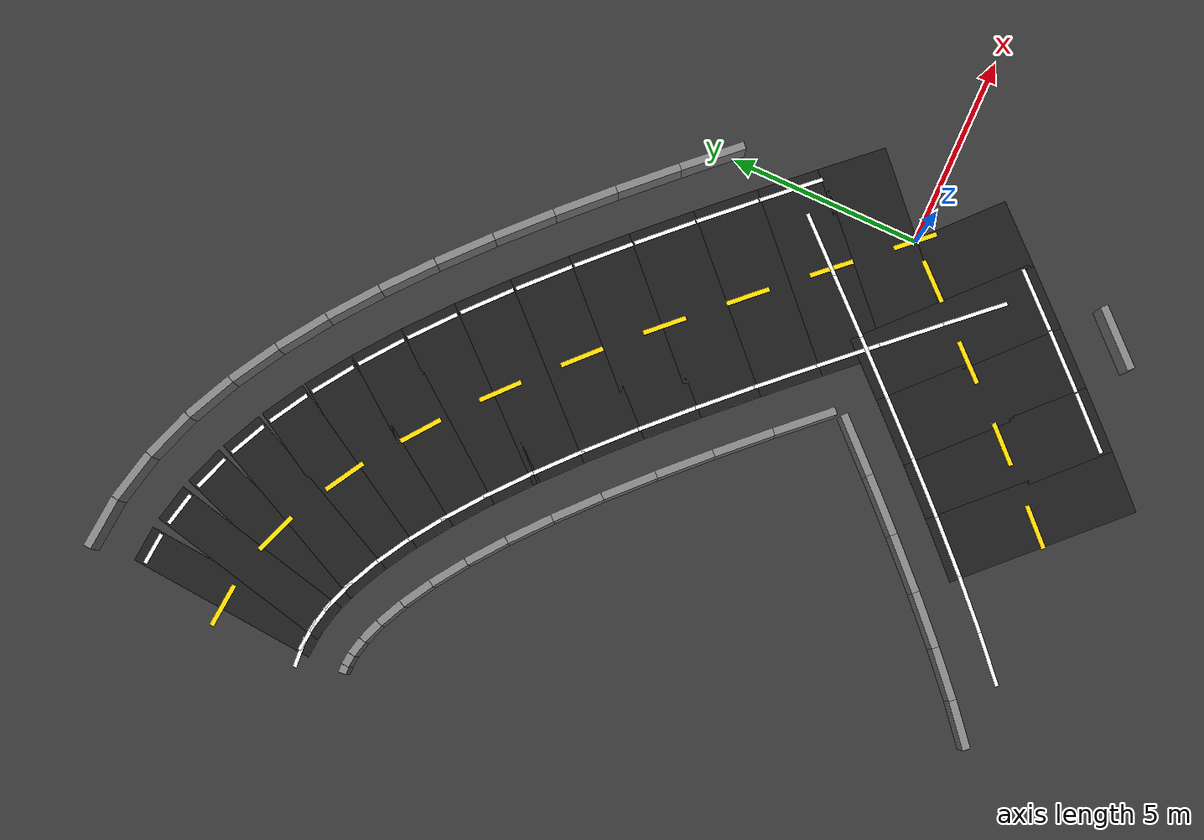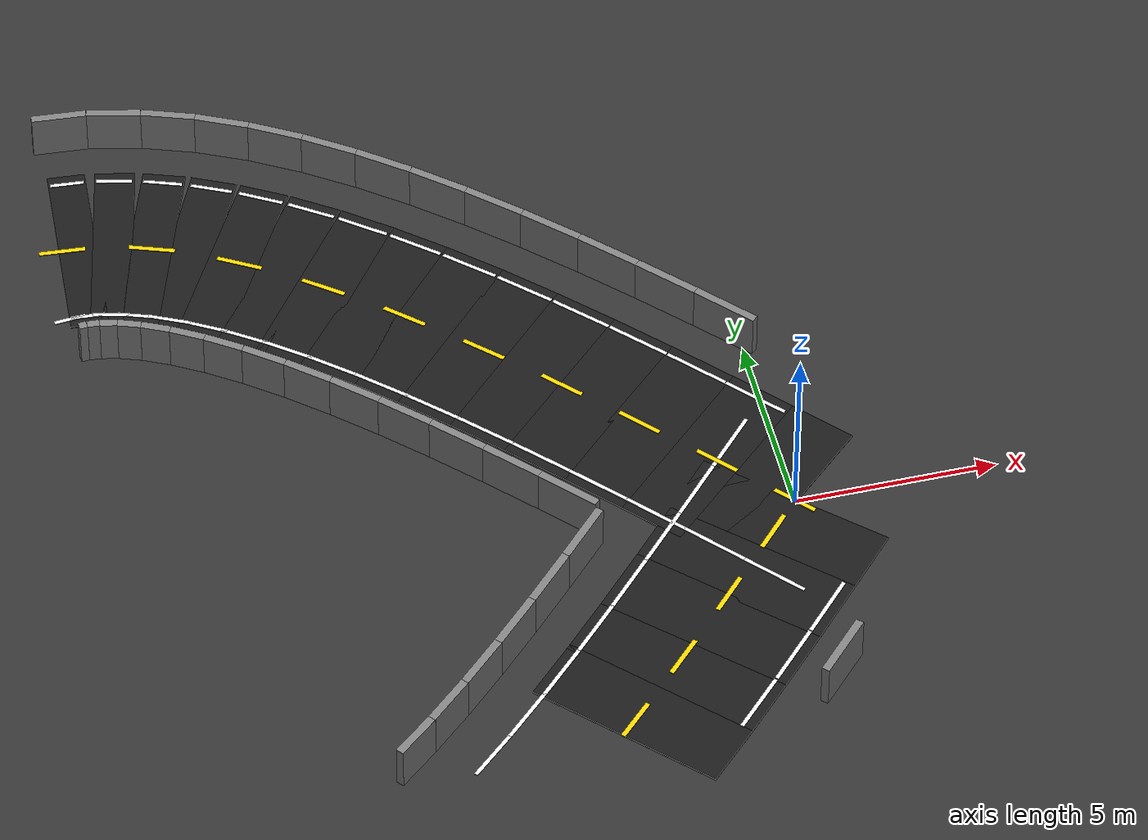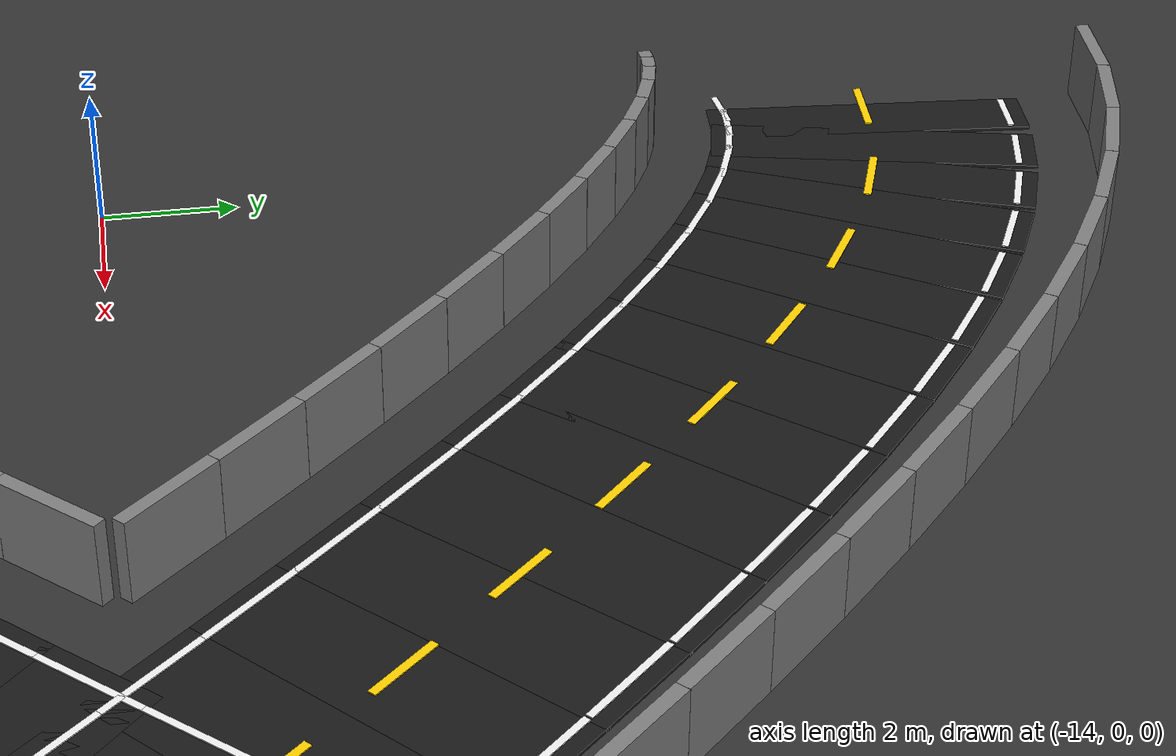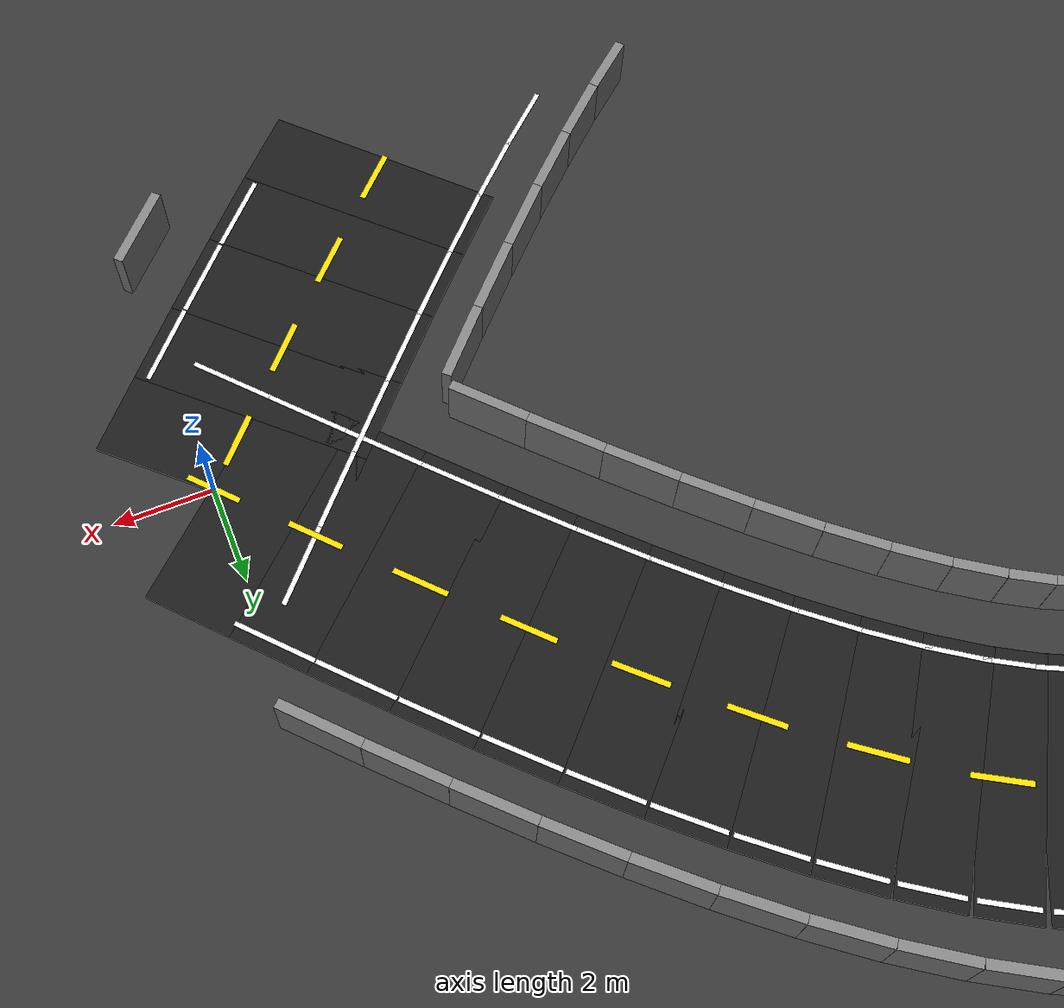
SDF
<sdf version="1.6">
 <world name="adas_figure8_circuit">
  <model name="ground">
   <static>true</static>
   <link name="link">
    <collision name="collision">
     <geometry><plane><normal>0 0 1</normal><size>80.0 80.0</size></plane></geometry>
    </collision>
    <visual name="visual">
     <geometry><plane><normal>0 0 1</normal><size>80.0 80.0</size></plane></geometry>
     <material><ambient>0.16 0.16 0.16 1</ambient><diffuse>0.20 0.20 0.20 1</diffuse></material>
    </visual>
   </link>
  </model>
  <model name="road_060">
   <static>true</static>
   <pose>-0.5757 0.6272 0.025 0 0 2.313427</pose>
   <link name="link">
    <collision name="collision"><geometry><box><size>1.8027 5.000 0.05</size></box></geometry></collision>
    <visual name="visual">
     <geometry><box><size>1.8027 5.000 0.05</size></box></geometry>
     <material><ambient>0.07 0.07 0.07 1</ambient><diffuse>0.10 0.10 0.10 1</diffuse></material>
    </visual>
   </link>
  </model>
  <model name="road_061">
   <static>true</static>
   <pose>-1.7255 1.8746 0.025 0 0 2.317549</pose>
   <link name="link">
    <collision name="collision"><geometry><box><size>1.7904 5.000 0.05</size></box></geometry></collision>
    <visual name="visual">
     <geometry><box><size>1.7904 5.000 0.05</size></box></geometry>
     <material><ambient>0.07 0.07 0.07 1</ambient><diffuse>0.10 0.10 0.10 1</diffuse></material>
    </visual>
   </link>
  </model>
  <model name="road_062">
   <static>true</static>
   <pose>-2.8706 3.1016 0.025 0 0 2.325917</pose>
   <link name="link">
    <collision name="collision"><geometry><box><size>1.7661 5.000 0.05</size></box></geometry></collision>
    <visual name="visual">
     <geometry><box><size>1.7661 5.000 0.05</size></box></geometry>
     <material><ambient>0.07 0.07 0.07 1</ambient><diffuse>0.10 0.10 0.10 1</diffuse></material>
    </visual>
   </link>
  </model>
  <model name="road_063">
   <static>true</static>
   <pose>-4.0078 4.2945 0.025 0 0 2.338784</pose>
   <link name="link">
    <collision name="collision"><geometry><box><size>1.7302 5.000 0.05</size></box></geometry></collision>
    <visual name="visual">
     <geometry><box><size>1.7302 5.000 0.05</size></box></geometry>
     <material><ambient>0.07 0.07 0.07 1</ambient><diffuse>0.10 0.10 0.10 1</diffuse></material>
    </visual>
   </link>
  </model>
  <model name="road_064">
   <static>true</static>
   <pose>-5.1340 5.4404 0.025 0 0 2.356552</pose>
   <link name="link">
    <collision name="collision"><geometry><box><size>1.6833 5.000 0.05</size></box></geometry></collision>
    <visual name="visual">
     <geometry><box><size>1.6833 5.000 0.05</size></box></geometry>
     <material><ambient>0.07 0.07 0.07 1</ambient><diffuse>0.10 0.10 0.10 1</diffuse></material>
    </visual>
   </link>
  </model>
  <model name="road_065">
   <static>true</static>
   <pose>-6.2462 6.5267 0.025 0 0 2.379794</pose>
   <link name="link">
    <collision name="collision"><geometry><box><size>1.6262 5.000 0.05</size></box></geometry></collision>
    <visual name="visual">
     <geometry><box><size>1.6262 5.000 0.05</size></box></geometry>
     <material><ambient>0.07 0.07 0.07 1</ambient><diffuse>0.10 0.10 0.10 1</diffuse></material>
    </visual>
   </link>
  </model>
  <model name="road_066">
   <static>true</static>
   <pose>-7.3412 7.5415 0.025 0 0 2.409289</pose>
   <link name="link">
    <collision name="collision"><geometry><box><size>1.5600 5.000 0.05</size></box></geometry></collision>
    <visual name="visual">
     <geometry><box><size>1.5600 5.000 0.05</size></box></geometry>
     <material><ambient>0.07 0.07 0.07 1</ambient><diffuse>0.10 0.10 0.10 1</diffuse></material>
    </visual>
   </link>
  </model>
  <model name="road_067">
   <static>true</static>
   <pose>-8.4162 8.4737 0.025 0 0 2.446072</pose>
   <link name="link">
    <collision name="collision"><geometry><box><size>1.4861 5.000 0.05</size></box></geometry></collision>
    <visual name="visual">
     <geometry><box><size>1.4861 5.000 0.05</size></box></geometry>
     <material><ambient>0.07 0.07 0.07 1</ambient><diffuse>0.10 0.10 0.10 1</diffuse></material>
    </visual>
   </link>
  </model>
  <model name="road_068">
   <static>true</static>
   <pose>-9.4680 9.3130 0.025 0 0 2.491490</pose>
   <link name="link">
    <collision name="collision"><geometry><box><size>1.4060 5.000 0.05</size></box></geometry></collision>
    <visual name="visual">
     <geometry><box><size>1.4060 5.000 0.05</size></box></geometry>
     <material><ambient>0.07 0.07 0.07 1</ambient><diffuse>0.10 0.10 0.10 1</diffuse></material>
    </visual>
   </link>
  </model>
  <model name="road_069">
   <static>true</static>
   <pose>-10.4939 10.0503 0.025 0 0 2.547260</pose>
   <link name="link">
    <collision name="collision"><geometry><box><size>1.3217 5.000 0.05</size></box></geometry></collision>
    <visual name="visual">
     <geometry><box><size>1.3217 5.000 0.05</size></box></geometry>
     <material><ambient>0.07 0.07 0.07 1</ambient><diffuse>0.10 0.10 0.10 1</diffuse></material>
    </visual>
   </link>
  </model>
  <model name="road_070">
   <static>true</static>
   <pose>-11.4910 10.6774 0.025 0 0 2.615516</pose>
   <link name="link">
    <collision name="collision"><geometry><box><size>1.2356 5.000 0.05</size></box></geometry></collision>
    <visual name="visual">
     <geometry><box><size>1.2356 5.000 0.05</size></box></geometry>
     <material><ambient>0.07 0.07 0.07 1</ambient><diffuse>0.10 0.10 0.10 1</diffuse></material>
    </visual>
   </link>
  </model>
  <model name="road_071">
   <static>true</static>
   <pose>-12.4567 11.1876 0.025 0 0 2.698785</pose>
   <link name="link">
    <collision name="collision"><geometry><box><size>1.1505 5.000 0.05</size></box></geometry></collision>
    <visual name="visual">
     <geometry><box><size>1.1505 5.000 0.05</size></box></geometry>
     <material><ambient>0.07 0.07 0.07 1</ambient><diffuse>0.10 0.10 0.10 1</diffuse></material>
    </visual>
   </link>
  </model>
  <model name="road_072">
   <static>true</static>
   <pose>-13.3882 11.5752 0.025 0 0 2.799787</pose>
   <link name="link">
    <collision name="collision"><geometry><box><size>1.0699 5.000 0.05</size></box></geometry></collision>
    <visual name="visual">
     <geometry><box><size>1.0699 5.000 0.05</size></box></geometry>
     <material><ambient>0.07 0.07 0.07 1</ambient><diffuse>0.10 0.10 0.10 1</diffuse></material>
    </visual>
   </link>
  </model>
  <model name="road_073">
   <static>true</static>
   <pose>-14.2830 11.8360 0.025 0 0 2.920897</pose>
   <link name="link">
    <collision name="collision"><geometry><box><size>0.9976 5.000 0.05</size></box></geometry></collision>
    <visual name="visual">
     <geometry><box><size>0.9976 5.000 0.05</size></box></geometry>
     <material><ambient>0.07 0.07 0.07 1</ambient><diffuse>0.10 0.10 0.10 1</diffuse></material>
    </visual>
   </link>
  </model>
  <model name="road_074">
   <static>true</static>
   <pose>-15.1386 11.9671 0.025 0 0 3.063072</pose>
   <link name="link">
    <collision name="collision"><geometry><box><size>0.9381 5.000 0.05</size></box></geometry></collision>
    <visual name="visual">
     <geometry><box><size>0.9381 5.000 0.05</size></box></geometry>
     <material><ambient>0.07 0.07 0.07 1</ambient><diffuse>0.10 0.10 0.10 1</diffuse></material>
    </visual>
   </link>
  </model>
  <model name="road_115">
   <static>true</static>
   <pose>-5.1340 -5.4404 0.025 0 0 0.785040</pose>
   <link name="link">
    <collision name="collision"><geometry><box><size>1.6833 5.000 0.05</size></box></geometry></collision>
    <visual name="visual">
     <geometry><box><size>1.6833 5.000 0.05</size></box></geometry>
     <material><ambient>0.07 0.07 0.07 1</ambient><diffuse>0.10 0.10 0.10 1</diffuse></material>
    </visual>
   </link>
  </model>
  <model name="road_116">
   <static>true</static>
   <pose>-4.0078 -4.2945 0.025 0 0 0.802808</pose>
   <link name="link">
    <collision name="collision"><geometry><box><size>1.7302 5.000 0.05</size></box></geometry></collision>
    <visual name="visual">
     <geometry><box><size>1.7302 5.000 0.05</size></box></geometry>
     <material><ambient>0.07 0.07 0.07 1</ambient><diffuse>0.10 0.10 0.10 1</diffuse></material>
    </visual>
   </link>
  </model>
  <model name="road_117">
   <static>true</static>
   <pose>-2.8706 -3.1016 0.025 0 0 0.815676</pose>
   <link name="link">
    <collision name="collision"><geometry><box><size>1.7661 5.000 0.05</size></box></geometry></collision>
    <visual name="visual">
     <geometry><box><size>1.7661 5.000 0.05</size></box></geometry>
     <material><ambient>0.07 0.07 0.07 1</ambient><diffuse>0.10 0.10 0.10 1</diffuse></material>
    </visual>
   </link>
  </model>
  <model name="road_118">
   <static>true</static>
   <pose>-1.7255 -1.8746 0.025 0 0 0.824044</pose>
   <link name="link">
    <collision name="collision"><geometry><box><size>1.7904 5.000 0.05</size></box></geometry></collision>
    <visual name="visual">
     <geometry><box><size>1.7904 5.000 0.05</size></box></geometry>
     <material><ambient>0.07 0.07 0.07 1</ambient><diffuse>0.10 0.10 0.10 1</diffuse></material>
    </visual>
   </link>
  </model>
  <model name="road_119">
   <static>true</static>
   <pose>-0.5757 -0.6272 0.025 0 0 0.828166</pose>
   <link name="link">
    <collision name="collision"><geometry><box><size>1.8027 5.000 0.05</size></box></geometry></collision>
    <visual name="visual">
     <geometry><box><size>1.8027 5.000 0.05</size></box></geometry>
     <material><ambient>0.07 0.07 0.07 1</ambient><diffuse>0.10 0.10 0.10 1</diffuse></material>
    </visual>
   </link>
  </model>
  <model name="center_dash_031">
   <static>true</static>
   <pose>0.0000 -0.0000 0.058 0 0 2.313427</pose>
   <link name="link">
    <visual name="visual">
     <geometry><box><size>1.150 0.12 0.02</size></box></geometry>
     <material><ambient>1 0.82 0 1</ambient><diffuse>1 0.82 0 1</diffuse></material>
    </visual>
   </link>
  </model>
  <model name="center_dash_032">
   <static>true</static>
   <pose>-1.5063 1.6378 0.058 0 0 2.317549</pose>
   <link name="link">
    <visual name="visual">
     <geometry><box><size>1.150 0.12 0.02</size></box></geometry>
     <material><ambient>1 0.82 0 1</ambient><diffuse>1 0.82 0 1</diffuse></material>
    </visual>
   </link>
  </model>
  <model name="center_dash_033">
   <static>true</static>
   <pose>-3.0242 3.2647 0.058 0 0 2.325917</pose>
   <link name="link">
    <visual name="visual">
     <geometry><box><size>1.150 0.12 0.02</size></box></geometry>
     <material><ambient>1 0.82 0 1</ambient><diffuse>1 0.82 0 1</diffuse></material>
    </visual>
   </link>
  </model>
  <model name="center_dash_034">
   <static>true</static>
   <pose>-4.5643 4.8707 0.058 0 0 2.338784</pose>
   <link name="link">
    <visual name="visual">
     <geometry><box><size>1.150 0.12 0.02</size></box></geometry>
     <material><ambient>1 0.82 0 1</ambient><diffuse>1 0.82 0 1</diffuse></material>
    </visual>
   </link>
  </model>
  <model name="center_dash_035">
   <static>true</static>
   <pose>-6.1482 6.4333 0.058 0 0 2.379794</pose>
   <link name="link">
    <visual name="visual">
     <geometry><box><size>1.150 0.12 0.02</size></box></geometry>
     <material><ambient>1 0.82 0 1</ambient><diffuse>1 0.82 0 1</diffuse></material>
    </visual>
   </link>
  </model>
  <model name="center_dash_036">
   <static>true</static>
   <pose>-7.7849 7.9404 0.058 0 0 2.409289</pose>
   <link name="link">
    <visual name="visual">
     <geometry><box><size>1.150 0.12 0.02</size></box></geometry>
     <material><ambient>1 0.82 0 1</ambient><diffuse>1 0.82 0 1</diffuse></material>
    </visual>
   </link>
  </model>
  <model name="center_dash_037">
   <static>true</static>
   <pose>-9.5099 9.3449 0.058 0 0 2.491490</pose>
   <link name="link">
    <visual name="visual">
     <geometry><box><size>1.150 0.12 0.02</size></box></geometry>
     <material><ambient>1 0.82 0 1</ambient><diffuse>1 0.82 0 1</diffuse></material>
    </visual>
   </link>
  </model>
  <model name="center_dash_038">
   <static>true</static>
   <pose>-11.3486 10.5947 0.058 0 0 2.615516</pose>
   <link name="link">
    <visual name="visual">
     <geometry><box><size>1.150 0.12 0.02</size></box></geometry>
     <material><ambient>1 0.82 0 1</ambient><diffuse>1 0.82 0 1</diffuse></material>
    </visual>
   </link>
  </model>
  <model name="center_dash_039">
   <static>true</static>
   <pose>-13.3478 11.5609 0.058 0 0 2.799787</pose>
   <link name="link">
    <visual name="visual">
     <geometry><box><size>1.150 0.12 0.02</size></box></geometry>
     <material><ambient>1 0.82 0 1</ambient><diffuse>1 0.82 0 1</diffuse></material>
    </visual>
   </link>
  </model>
  <model name="center_dash_040">
   <static>true</static>
   <pose>-15.5181 11.9970 0.058 0 0 3.063072</pose>
   <link name="link">
    <visual name="visual">
     <geometry><box><size>1.150 0.12 0.02</size></box></geometry>
     <material><ambient>1 0.82 0 1</ambient><diffuse>1 0.82 0 1</diffuse></material>
    </visual>
   </link>
  </model>
  <model name="center_dash_059">
   <static>true</static>
   <pose>-5.3511 -5.6573 0.058 0 0 0.785040</pose>
   <link name="link">
    <visual name="visual">
     <geometry><box><size>1.150 0.12 0.02</size></box></geometry>
     <material><ambient>1 0.82 0 1</ambient><diffuse>1 0.82 0 1</diffuse></material>
    </visual>
   </link>
  </model>
  <model name="center_dash_060">
   <static>true</static>
   <pose>-3.7914 -4.0704 0.058 0 0 0.802808</pose>
   <link name="link">
    <visual name="visual">
     <geometry><box><size>1.150 0.12 0.02</size></box></geometry>
     <material><ambient>1 0.82 0 1</ambient><diffuse>1 0.82 0 1</diffuse></material>
    </visual>
   </link>
  </model>
  <model name="center_dash_061">
   <static>true</static>
   <pose>-2.2620 -2.4543 0.058 0 0 0.824044</pose>
   <link name="link">
    <visual name="visual">
     <geometry><box><size>1.150 0.12 0.02</size></box></geometry>
     <material><ambient>1 0.82 0 1</ambient><diffuse>1 0.82 0 1</diffuse></material>
    </visual>
   </link>
  </model>
  <model name="center_dash_062">
   <static>true</static>
   <pose>-0.7523 -0.8196 0.058 0 0 0.828166</pose>
   <link name="link">
    <visual name="visual">
     <geometry><box><size>1.150 0.12 0.02</size></box></geometry>
     <material><ambient>1 0.82 0 1</ambient><diffuse>1 0.82 0 1</diffuse></material>
    </visual>
   </link>
  </model>
  <model name="edge_left_000">
   <static>true</static>
   <pose>-1.0598 2.1284 0.058 0 0 0.828166</pose>
   <link name="link">
    <visual name="visual">
     <geometry><box><size>1.7027 0.10 0.02</size></box></geometry>
     <material><ambient>0.95 0.95 0.95 1</ambient><diffuse>0.95 0.95 0.95 1</diffuse></material>
    </visual>
   </link>
  </model>
  <model name="edge_left_059">
   <static>true</static>
   <pose>-1.0598 -2.1284 0.058 0 0 2.313427</pose>
   <link name="link">
    <visual name="visual">
     <geometry><box><size>1.7027 0.10 0.02</size></box></geometry>
     <material><ambient>0.95 0.95 0.95 1</ambient><diffuse>0.95 0.95 0.95 1</diffuse></material>
    </visual>
   </link>
  </model>
  <model name="edge_left_060">
   <static>true</static>
   <pose>-2.2112 -0.8741 0.058 0 0 2.313427</pose>
   <link name="link">
    <visual name="visual">
     <geometry><box><size>1.7027 0.10 0.02</size></box></geometry>
     <material><ambient>0.95 0.95 0.95 1</ambient><diffuse>0.95 0.95 0.95 1</diffuse></material>
    </visual>
   </link>
  </model>
  <model name="edge_left_061">
   <static>true</static>
   <pose>-3.3548 0.3667 0.058 0 0 2.317549</pose>
   <link name="link">
    <visual name="visual">
     <geometry><box><size>1.6904 0.10 0.02</size></box></geometry>
     <material><ambient>0.95 0.95 0.95 1</ambient><diffuse>0.95 0.95 0.95 1</diffuse></material>
    </visual>
   </link>
  </model>
  <model name="edge_left_062">
   <static>true</static>
   <pose>-4.4872 1.5800 0.058 0 0 2.325917</pose>
   <link name="link">
    <visual name="visual">
     <geometry><box><size>1.6661 0.10 0.02</size></box></geometry>
     <material><ambient>0.95 0.95 0.95 1</ambient><diffuse>0.95 0.95 0.95 1</diffuse></material>
    </visual>
   </link>
  </model>
  <model name="edge_left_063">
   <static>true</static>
   <pose>-5.6047 2.7523 0.058 0 0 2.338784</pose>
   <link name="link">
    <visual name="visual">
     <geometry><box><size>1.6302 0.10 0.02</size></box></geometry>
     <material><ambient>0.95 0.95 0.95 1</ambient><diffuse>0.95 0.95 0.95 1</diffuse></material>
    </visual>
   </link>
  </model>
  <model name="edge_left_064">
   <static>true</static>
   <pose>-6.7033 3.8701 0.058 0 0 2.356552</pose>
   <link name="link">
    <visual name="visual">
     <geometry><box><size>1.5833 0.10 0.02</size></box></geometry>
     <material><ambient>0.95 0.95 0.95 1</ambient><diffuse>0.95 0.95 0.95 1</diffuse></material>
    </visual>
   </link>
  </model>
  <model name="edge_left_065">
   <static>true</static>
   <pose>-7.7785 4.9203 0.058 0 0 2.379794</pose>
   <link name="link">
    <visual name="visual">
     <geometry><box><size>1.5262 0.10 0.02</size></box></geometry>
     <material><ambient>0.95 0.95 0.95 1</ambient><diffuse>0.95 0.95 0.95 1</diffuse></material>
    </visual>
   </link>
  </model>
  <model name="edge_left_066">
   <static>true</static>
   <pose>-8.8255 5.8906 0.058 0 0 2.409289</pose>
   <link name="link">
    <visual name="visual">
     <geometry><box><size>1.4600 0.10 0.02</size></box></geometry>
     <material><ambient>0.95 0.95 0.95 1</ambient><diffuse>0.95 0.95 0.95 1</diffuse></material>
    </visual>
   </link>
  </model>
  <model name="edge_left_067">
   <static>true</static>
   <pose>-9.8387 6.7693 0.058 0 0 2.446072</pose>
   <link name="link">
    <visual name="visual">
     <geometry><box><size>1.3861 0.10 0.02</size></box></geometry>
     <material><ambient>0.95 0.95 0.95 1</ambient><diffuse>0.95 0.95 0.95 1</diffuse></material>
    </visual>
   </link>
  </model>
  <model name="edge_left_068">
   <static>true</static>
   <pose>-10.8117 7.5458 0.058 0 0 2.491490</pose>
   <link name="link">
    <visual name="visual">
     <geometry><box><size>1.3060 0.10 0.02</size></box></geometry>
     <material><ambient>0.95 0.95 0.95 1</ambient><diffuse>0.95 0.95 0.95 1</diffuse></material>
    </visual>
   </link>
  </model>
  <model name="edge_left_069">
   <static>true</static>
   <pose>-11.7370 8.2109 0.058 0 0 2.547260</pose>
   <link name="link">
    <visual name="visual">
     <geometry><box><size>1.2217 0.10 0.02</size></box></geometry>
     <material><ambient>0.95 0.95 0.95 1</ambient><diffuse>0.95 0.95 0.95 1</diffuse></material>
    </visual>
   </link>
  </model>
  <model name="edge_left_070">
   <static>true</static>
   <pose>-12.6058 8.7576 0.058 0 0 2.615516</pose>
   <link name="link">
    <visual name="visual">
     <geometry><box><size>1.1356 0.10 0.02</size></box></geometry>
     <material><ambient>0.95 0.95 0.95 1</ambient><diffuse>0.95 0.95 0.95 1</diffuse></material>
    </visual>
   </link>
  </model>
  <model name="edge_left_071">
   <static>true</static>
   <pose>-13.4079 9.1817 0.058 0 0 2.698785</pose>
   <link name="link">
    <visual name="visual">
     <geometry><box><size>1.0505 0.10 0.02</size></box></geometry>
     <material><ambient>0.95 0.95 0.95 1</ambient><diffuse>0.95 0.95 0.95 1</diffuse></material>
    </visual>
   </link>
  </model>
  <model name="edge_left_072">
   <static>true</static>
   <pose>-14.1323 9.4836 0.058 0 0 2.799787</pose>
   <link name="link">
    <visual name="visual">
     <geometry><box><size>0.9699 0.10 0.02</size></box></geometry>
     <material><ambient>0.95 0.95 0.95 1</ambient><diffuse>0.95 0.95 0.95 1</diffuse></material>
    </visual>
   </link>
  </model>
  <model name="edge_left_073">
   <static>true</static>
   <pose>-14.7689 9.6699 0.058 0 0 2.920897</pose>
   <link name="link">
    <visual name="visual">
     <geometry><box><size>0.8976 0.10 0.02</size></box></geometry>
     <material><ambient>0.95 0.95 0.95 1</ambient><diffuse>0.95 0.95 0.95 1</diffuse></material>
    </visual>
   </link>
  </model>
  <model name="edge_left_074">
   <static>true</static>
   <pose>-15.3127 9.7540 0.058 0 0 3.063072</pose>
   <link name="link">
    <visual name="visual">
     <geometry><box><size>0.8381 0.10 0.02</size></box></geometry>
     <material><ambient>0.95 0.95 0.95 1</ambient><diffuse>0.95 0.95 0.95 1</diffuse></material>
    </visual>
   </link>
  </model>
  <model name="edge_left_075">
   <static>true</static>
   <pose>-15.7693 9.7547 0.058 0 0 -3.058868</pose>
   <link name="link">
    <visual name="visual">
     <geometry><box><size>0.7956 0.10 0.02</size></box></geometry>
     <material><ambient>0.95 0.95 0.95 1</ambient><diffuse>0.95 0.95 0.95 1</diffuse></material>
    </visual>
   </link>
  </model>
  <model name="edge_left_113">
   <static>true</static>
   <pose>-8.8255 -5.8906 0.058 0 0 0.732304</pose>
   <link name="link">
    <visual name="visual">
     <geometry><box><size>1.4600 0.10 0.02</size></box></geometry>
     <material><ambient>0.95 0.95 0.95 1</ambient><diffuse>0.95 0.95 0.95 1</diffuse></material>
    </visual>
   </link>
  </model>
  <model name="edge_left_114">
   <static>true</static>
   <pose>-7.7785 -4.9203 0.058 0 0 0.761799</pose>
   <link name="link">
    <visual name="visual">
     <geometry><box><size>1.5262 0.10 0.02</size></box></geometry>
     <material><ambient>0.95 0.95 0.95 1</ambient><diffuse>0.95 0.95 0.95 1</diffuse></material>
    </visual>
   </link>
  </model>
  <model name="edge_left_115">
   <static>true</static>
   <pose>-6.7033 -3.8701 0.058 0 0 0.785040</pose>
   <link name="link">
    <visual name="visual">
     <geometry><box><size>1.5833 0.10 0.02</size></box></geometry>
     <material><ambient>0.95 0.95 0.95 1</ambient><diffuse>0.95 0.95 0.95 1</diffuse></material>
    </visual>
   </link>
  </model>
  <model name="edge_left_116">
   <static>true</static>
   <pose>-5.6047 -2.7523 0.058 0 0 0.802808</pose>
   <link name="link">
    <visual name="visual">
     <geometry><box><size>1.6302 0.10 0.02</size></box></geometry>
     <material><ambient>0.95 0.95 0.95 1</ambient><diffuse>0.95 0.95 0.95 1</diffuse></material>
    </visual>
   </link>
  </model>
  <model name="edge_left_117">
   <static>true</static>
   <pose>-4.4872 -1.5800 0.058 0 0 0.815676</pose>
   <link name="link">
    <visual name="visual">
     <geometry><box><size>1.6661 0.10 0.02</size></box></geometry>
     <material><ambient>0.95 0.95 0.95 1</ambient><diffuse>0.95 0.95 0.95 1</diffuse></material>
    </visual>
   </link>
  </model>
  <model name="edge_left_118">
   <static>true</static>
   <pose>-3.3548 -0.3667 0.058 0 0 0.824044</pose>
   <link name="link">
    <visual name="visual">
     <geometry><box><size>1.6904 0.10 0.02</size></box></geometry>
     <material><ambient>0.95 0.95 0.95 1</ambient><diffuse>0.95 0.95 0.95 1</diffuse></material>
    </visual>
   </link>
  </model>
  <model name="edge_left_119">
   <static>true</static>
   <pose>-2.2112 0.8741 0.058 0 0 0.828166</pose>
   <link name="link">
    <visual name="visual">
     <geometry><box><size>1.7027 0.10 0.02</size></box></geometry>
     <material><ambient>0.95 0.95 0.95 1</ambient><diffuse>0.95 0.95 0.95 1</diffuse></material>
    </visual>
   </link>
  </model>
  <model name="edge_right_061">
   <static>true</static>
   <pose>-0.0963 3.3826 0.058 0 0 2.317549</pose>
   <link name="link">
    <visual name="visual">
     <geometry><box><size>1.6904 0.10 0.02</size></box></geometry>
     <material><ambient>0.95 0.95 0.95 1</ambient><diffuse>0.95 0.95 0.95 1</diffuse></material>
    </visual>
   </link>
  </model>
  <model name="edge_right_062">
   <static>true</static>
   <pose>-1.2540 4.6231 0.058 0 0 2.325917</pose>
   <link name="link">
    <visual name="visual">
     <geometry><box><size>1.6661 0.10 0.02</size></box></geometry>
     <material><ambient>0.95 0.95 0.95 1</ambient><diffuse>0.95 0.95 0.95 1</diffuse></material>
    </visual>
   </link>
  </model>
  <model name="edge_right_063">
   <static>true</static>
   <pose>-2.4109 5.8367 0.058 0 0 2.338784</pose>
   <link name="link">
    <visual name="visual">
     <geometry><box><size>1.6302 0.10 0.02</size></box></geometry>
     <material><ambient>0.95 0.95 0.95 1</ambient><diffuse>0.95 0.95 0.95 1</diffuse></material>
    </visual>
   </link>
  </model>
  <model name="edge_right_064">
   <static>true</static>
   <pose>-3.5648 7.0108 0.058 0 0 2.356552</pose>
   <link name="link">
    <visual name="visual">
     <geometry><box><size>1.5833 0.10 0.02</size></box></geometry>
     <material><ambient>0.95 0.95 0.95 1</ambient><diffuse>0.95 0.95 0.95 1</diffuse></material>
    </visual>
   </link>
  </model>
  <model name="edge_right_065">
   <static>true</static>
   <pose>-4.7139 8.1331 0.058 0 0 2.379794</pose>
   <link name="link">
    <visual name="visual">
     <geometry><box><size>1.5262 0.10 0.02</size></box></geometry>
     <material><ambient>0.95 0.95 0.95 1</ambient><diffuse>0.95 0.95 0.95 1</diffuse></material>
    </visual>
   </link>
  </model>
  <model name="edge_right_066">
   <static>true</static>
   <pose>-5.8570 9.1924 0.058 0 0 2.409289</pose>
   <link name="link">
    <visual name="visual">
     <geometry><box><size>1.4600 0.10 0.02</size></box></geometry>
     <material><ambient>0.95 0.95 0.95 1</ambient><diffuse>0.95 0.95 0.95 1</diffuse></material>
    </visual>
   </link>
  </model>
  <model name="edge_right_067">
   <static>true</static>
   <pose>-6.9936 10.1780 0.058 0 0 2.446072</pose>
   <link name="link">
    <visual name="visual">
     <geometry><box><size>1.3861 0.10 0.02</size></box></geometry>
     <material><ambient>0.95 0.95 0.95 1</ambient><diffuse>0.95 0.95 0.95 1</diffuse></material>
    </visual>
   </link>
  </model>
  <model name="edge_right_068">
   <static>true</static>
   <pose>-8.1243 11.0801 0.058 0 0 2.491490</pose>
   <link name="link">
    <visual name="visual">
     <geometry><box><size>1.3060 0.10 0.02</size></box></geometry>
     <material><ambient>0.95 0.95 0.95 1</ambient><diffuse>0.95 0.95 0.95 1</diffuse></material>
    </visual>
   </link>
  </model>
  <model name="edge_right_069">
   <static>true</static>
   <pose>-9.2508 11.8896 0.058 0 0 2.547260</pose>
   <link name="link">
    <visual name="visual">
     <geometry><box><size>1.2217 0.10 0.02</size></box></geometry>
     <material><ambient>0.95 0.95 0.95 1</ambient><diffuse>0.95 0.95 0.95 1</diffuse></material>
    </visual>
   </link>
  </model>
  <model name="edge_right_070">
   <static>true</static>
   <pose>-10.3763 12.5972 0.058 0 0 2.615516</pose>
   <link name="link">
    <visual name="visual">
     <geometry><box><size>1.1356 0.10 0.02</size></box></geometry>
     <material><ambient>0.95 0.95 0.95 1</ambient><diffuse>0.95 0.95 0.95 1</diffuse></material>
    </visual>
   </link>
  </model>
  <model name="edge_right_071">
   <static>true</static>
   <pose>-11.5054 13.1935 0.058 0 0 2.698785</pose>
   <link name="link">
    <visual name="visual">
     <geometry><box><size>1.0505 0.10 0.02</size></box></geometry>
     <material><ambient>0.95 0.95 0.95 1</ambient><diffuse>0.95 0.95 0.95 1</diffuse></material>
    </visual>
   </link>
  </model>
  <model name="edge_right_072">
   <static>true</static>
   <pose>-12.6440 13.6668 0.058 0 0 2.799787</pose>
   <link name="link">
    <visual name="visual">
     <geometry><box><size>0.9699 0.10 0.02</size></box></geometry>
     <material><ambient>0.95 0.95 0.95 1</ambient><diffuse>0.95 0.95 0.95 1</diffuse></material>
    </visual>
   </link>
  </model>
  <model name="edge_right_073">
   <static>true</static>
   <pose>-13.7970 14.0022 0.058 0 0 2.920897</pose>
   <link name="link">
    <visual name="visual">
     <geometry><box><size>0.8976 0.10 0.02</size></box></geometry>
     <material><ambient>0.95 0.95 0.95 1</ambient><diffuse>0.95 0.95 0.95 1</diffuse></material>
    </visual>
   </link>
  </model>
  <model name="edge_right_074">
   <static>true</static>
   <pose>-14.9645 14.1803 0.058 0 0 3.063072</pose>
   <link name="link">
    <visual name="visual">
     <geometry><box><size>0.8381 0.10 0.02</size></box></geometry>
     <material><ambient>0.95 0.95 0.95 1</ambient><diffuse>0.95 0.95 0.95 1</diffuse></material>
    </visual>
   </link>
  </model>
  <model name="edge_right_116">
   <static>true</static>
   <pose>-2.4109 -5.8367 0.058 0 0 0.802808</pose>
   <link name="link">
    <visual name="visual">
     <geometry><box><size>1.6302 0.10 0.02</size></box></geometry>
     <material><ambient>0.95 0.95 0.95 1</ambient><diffuse>0.95 0.95 0.95 1</diffuse></material>
    </visual>
   </link>
  </model>
  <model name="edge_right_117">
   <static>true</static>
   <pose>-1.2540 -4.6231 0.058 0 0 0.815676</pose>
   <link name="link">
    <visual name="visual">
     <geometry><box><size>1.6661 0.10 0.02</size></box></geometry>
     <material><ambient>0.95 0.95 0.95 1</ambient><diffuse>0.95 0.95 0.95 1</diffuse></material>
    </visual>
   </link>
  </model>
  <model name="edge_right_118">
   <static>true</static>
   <pose>-0.0963 -3.3826 0.058 0 0 0.824044</pose>
   <link name="link">
    <visual name="visual">
     <geometry><box><size>1.6904 0.10 0.02</size></box></geometry>
     <material><ambient>0.95 0.95 0.95 1</ambient><diffuse>0.95 0.95 0.95 1</diffuse></material>
    </visual>
   </link>
  </model>
  <model name="slam_barrier_left_062">
   <static>true</static>
   <pose>-5.4183 0.7018 0.6000
        0 0 2.325908</pose>
   <link name="link">
    <collision name="collision">
     <geometry><box><size>1.6291
                0.2000
                1.2000</size></box></geometry>
    </collision>
    <visual name="visual">
     <geometry><box><size>1.6291
                0.2000
                1.2000</size></box></geometry>
     <material><ambient>0.4 0.4 0.4 1</ambient><diffuse>0.5 0.5 0.5 1</diffuse></material>
    </visual>
   </link>
  </model>
  <model name="slam_barrier_right_062">
   <static>true</static>
   <pose>-0.3229 5.5014 0.6000
        0 0 2.325925</pose>
   <link name="link">
    <collision name="collision">
     <geometry><box><size>1.7032
                0.2000
                1.2000</size></box></geometry>
    </collision>
    <visual name="visual">
     <geometry><box><size>1.7032
                0.2000
                1.2000</size></box></geometry>
     <material><ambient>0.4 0.4 0.4 1</ambient><diffuse>0.5 0.5 0.5 1</diffuse></material>
    </visual>
   </link>
  </model>
  <model name="slam_barrier_left_063">
   <static>true</static>
   <pose>-6.5242 1.8621 0.6000
        0 0 2.338769</pose>
   <link name="link">
    <collision name="collision">
     <geometry><box><size>1.5768
                0.2000
                1.2000</size></box></geometry>
    </collision>
    <visual name="visual">
     <geometry><box><size>1.5768
                0.2000
                1.2000</size></box></geometry>
     <material><ambient>0.4 0.4 0.4 1</ambient><diffuse>0.5 0.5 0.5 1</diffuse></material>
    </visual>
   </link>
  </model>
  <model name="slam_barrier_right_063">
   <static>true</static>
   <pose>-1.4914 6.7270 0.6000
        0 0 2.338798</pose>
   <link name="link">
    <collision name="collision">
     <geometry><box><size>1.6836
                0.2000
                1.2000</size></box></geometry>
    </collision>
    <visual name="visual">
     <geometry><box><size>1.6836
                0.2000
                1.2000</size></box></geometry>
     <material><ambient>0.4 0.4 0.4 1</ambient><diffuse>0.5 0.5 0.5 1</diffuse></material>
    </visual>
   </link>
  </model>
  <model name="slam_barrier_left_064">
   <static>true</static>
   <pose>-7.6066 2.9635 0.6000
        0 0 2.356528</pose>
   <link name="link">
    <collision name="collision">
     <geometry><box><size>1.5118
                0.2000
                1.2000</size></box></geometry>
    </collision>
    <visual name="visual">
     <geometry><box><size>1.5118
                0.2000
                1.2000</size></box></geometry>
     <material><ambient>0.4 0.4 0.4 1</ambient><diffuse>0.5 0.5 0.5 1</diffuse></material>
    </visual>
   </link>
  </model>
  <model name="slam_barrier_right_064">
   <static>true</static>
   <pose>-2.6614 7.9173 0.6000
        0 0 2.356575</pose>
   <link name="link">
    <collision name="collision">
     <geometry><box><size>1.6548
                0.2000
                1.2000</size></box></geometry>
    </collision>
    <visual name="visual">
     <geometry><box><size>1.6548
                0.2000
                1.2000</size></box></geometry>
     <material><ambient>0.4 0.4 0.4 1</ambient><diffuse>0.5 0.5 0.5 1</diffuse></material>
    </visual>
   </link>
  </model>
  <model name="slam_barrier_left_065">
   <static>true</static>
   <pose>-8.6602 3.9929 0.6000
        0 0 2.379755</pose>
   <link name="link">
    <collision name="collision">
     <geometry><box><size>1.4343
                0.2000
                1.2000</size></box></geometry>
    </collision>
    <visual name="visual">
     <geometry><box><size>1.4343
                0.2000
                1.2000</size></box></geometry>
     <material><ambient>0.4 0.4 0.4 1</ambient><diffuse>0.5 0.5 0.5 1</diffuse></material>
    </visual>
   </link>
  </model>
  <model name="slam_barrier_right_065">
   <static>true</static>
   <pose>-3.8322 9.0605 0.6000
        0 0 2.379829</pose>
   <link name="link">
    <collision name="collision">
     <geometry><box><size>1.6181
                0.2000
                1.2000</size></box></geometry>
    </collision>
    <visual name="visual">
     <geometry><box><size>1.6181
                0.2000
                1.2000</size></box></geometry>
     <material><ambient>0.4 0.4 0.4 1</ambient><diffuse>0.5 0.5 0.5 1</diffuse></material>
    </visual>
   </link>
  </model>
  <model name="slam_barrier_left_066">
   <static>true</static>
   <pose>-9.6790 4.9374 0.6000
        0 0 2.409226</pose>
   <link name="link">
    <collision name="collision">
     <geometry><box><size>1.3445
                0.2000
                1.2000</size></box></geometry>
    </collision>
    <visual name="visual">
     <geometry><box><size>1.3445
                0.2000
                1.2000</size></box></geometry>
     <material><ambient>0.4 0.4 0.4 1</ambient><diffuse>0.5 0.5 0.5 1</diffuse></material>
    </visual>
   </link>
  </model>
  <model name="slam_barrier_right_066">
   <static>true</static>
   <pose>-5.0034 10.1456 0.6000
        0 0 2.409343</pose>
   <link name="link">
    <collision name="collision">
     <geometry><box><size>1.5755
                0.2000
                1.2000</size></box></geometry>
    </collision>
    <visual name="visual">
     <geometry><box><size>1.5755
                0.2000
                1.2000</size></box></geometry>
     <material><ambient>0.4 0.4 0.4 1</ambient><diffuse>0.5 0.5 0.5 1</diffuse></material>
    </visual>
   </link>
  </model>
  <model name="slam_barrier_left_067">
   <static>true</static>
   <pose>-10.6560 5.7852 0.6000
        0 0 2.445968</pose>
   <link name="link">
    <collision name="collision">
     <geometry><box><size>1.2429
                0.2000
                1.2000</size></box></geometry>
    </collision>
    <visual name="visual">
     <geometry><box><size>1.2429
                0.2000
                1.2000</size></box></geometry>
     <material><ambient>0.4 0.4 0.4 1</ambient><diffuse>0.5 0.5 0.5 1</diffuse></material>
    </visual>
   </link>
  </model>
  <model name="slam_barrier_right_067">
   <static>true</static>
   <pose>-6.1763 11.1621 0.6000
        0 0 2.446157</pose>
   <link name="link">
    <collision name="collision">
     <geometry><box><size>1.5293
                0.2000
                1.2000</size></box></geometry>
    </collision>
    <visual name="visual">
     <geometry><box><size>1.5293
                0.2000
                1.2000</size></box></geometry>
     <material><ambient>0.4 0.4 0.4 1</ambient><diffuse>0.5 0.5 0.5 1</diffuse></material>
    </visual>
   </link>
  </model>
  <model name="slam_barrier_left_068">
   <static>true</static>
   <pose>-11.5826 6.5254 0.6000
        0 0 2.491314</pose>
   <link name="link">
    <collision name="collision">
     <geometry><box><size>1.1297
                0.2000
                1.2000</size></box></geometry>
    </collision>
    <visual name="visual">
     <geometry><box><size>1.1297
                0.2000
                1.2000</size></box></geometry>
     <material><ambient>0.4 0.4 0.4 1</ambient><diffuse>0.5 0.5 0.5 1</diffuse></material>
    </visual>
   </link>
  </model>
  <model name="slam_barrier_right_068">
   <static>true</static>
   <pose>-7.3534 12.1005 0.6000
        0 0 2.491623</pose>
   <link name="link">
    <collision name="collision">
     <geometry><box><size>1.4822
                0.2000
                1.2000</size></box></geometry>
    </collision>
    <visual name="visual">
     <geometry><box><size>1.4822
                0.2000
                1.2000</size></box></geometry>
     <material><ambient>0.4 0.4 0.4 1</ambient><diffuse>0.5 0.5 0.5 1</diffuse></material>
    </visual>
   </link>
  </model>
  <model name="slam_barrier_left_069">
   <static>true</static>
   <pose>-12.4488 7.1491 0.6000
        0 0 2.546959</pose>
   <link name="link">
    <collision name="collision">
     <geometry><box><size>1.0057
                0.2000
                1.2000</size></box></geometry>
    </collision>
    <visual name="visual">
     <geometry><box><size>1.0057
                0.2000
                1.2000</size></box></geometry>
     <material><ambient>0.4 0.4 0.4 1</ambient><diffuse>0.5 0.5 0.5 1</diffuse></material>
    </visual>
   </link>
  </model>
  <model name="slam_barrier_right_069">
   <static>true</static>
   <pose>-8.5390 12.9514 0.6000
        0 0 2.547470</pose>
   <link name="link">
    <collision name="collision">
     <geometry><box><size>1.4377
                0.2000
                1.2000</size></box></geometry>
    </collision>
    <visual name="visual">
     <geometry><box><size>1.4377
                0.2000
                1.2000</size></box></geometry>
     <material><ambient>0.4 0.4 0.4 1</ambient><diffuse>0.5 0.5 0.5 1</diffuse></material>
    </visual>
   </link>
  </model>
  <model name="slam_barrier_left_070">
   <static>true</static>
   <pose>-13.2421 7.6498 0.6000
        0 0 2.614993</pose>
   <link name="link">
    <collision name="collision">
     <geometry><box><size>0.8716
                0.2000
                1.2000</size></box></geometry>
    </collision>
    <visual name="visual">
     <geometry><box><size>0.8716
                0.2000
                1.2000</size></box></geometry>
     <material><ambient>0.4 0.4 0.4 1</ambient><diffuse>0.5 0.5 0.5 1</diffuse></material>
    </visual>
   </link>
  </model>
  <model name="slam_barrier_right_070">
   <static>true</static>
   <pose>-9.7400 13.7050 0.6000
        0 0 2.615842</pose>
   <link name="link">
    <collision name="collision">
     <geometry><box><size>1.3996
                0.2000
                1.2000</size></box></geometry>
    </collision>
    <visual name="visual">
     <geometry><box><size>1.3996
                0.2000
                1.2000</size></box></geometry>
     <material><ambient>0.4 0.4 0.4 1</ambient><diffuse>0.5 0.5 0.5 1</diffuse></material>
    </visual>
   </link>
  </model>
  <model name="slam_barrier_left_071">
   <static>true</static>
   <pose>-13.9482 8.0254 0.6000
        0 0 2.697866</pose>
   <link name="link">
    <collision name="collision">
     <geometry><box><size>0.7293
                0.2000
                1.2000</size></box></geometry>
    </collision>
    <visual name="visual">
     <geometry><box><size>0.7293
                0.2000
                1.2000</size></box></geometry>
     <material><ambient>0.4 0.4 0.4 1</ambient><diffuse>0.5 0.5 0.5 1</diffuse></material>
    </visual>
   </link>
  </model>
  <model name="slam_barrier_right_071">
   <static>true</static>
   <pose>-10.9652 14.3498 0.6000
        0 0 2.699274</pose>
   <link name="link">
    <collision name="collision">
     <geometry><box><size>1.3718
                0.2000
                1.2000</size></box></geometry>
    </collision>
    <visual name="visual">
     <geometry><box><size>1.3718
                0.2000
                1.2000</size></box></geometry>
     <material><ambient>0.4 0.4 0.4 1</ambient><diffuse>0.5 0.5 0.5 1</diffuse></material>
    </visual>
   </link>
  </model>
  <model name="slam_barrier_left_072">
   <static>true</static>
   <pose>-14.5516 8.2799 0.6000
        0 0 2.798177</pose>
   <link name="link">
    <collision name="collision">
     <geometry><box><size>0.5821
                0.2000
                1.2000</size></box></geometry>
    </collision>
    <visual name="visual">
     <geometry><box><size>0.5821
                0.2000
                1.2000</size></box></geometry>
     <material><ambient>0.4 0.4 0.4 1</ambient><diffuse>0.5 0.5 0.5 1</diffuse></material>
    </visual>
   </link>
  </model>
  <model name="slam_barrier_right_072">
   <static>true</static>
   <pose>-12.2248 14.8705 0.6000
        0 0 2.800477</pose>
   <link name="link">
    <collision name="collision">
     <geometry><box><size>1.3576
                0.2000
                1.2000</size></box></geometry>
    </collision>
    <visual name="visual">
     <geometry><box><size>1.3576
                0.2000
                1.2000</size></box></geometry>
     <material><ambient>0.4 0.4 0.4 1</ambient><diffuse>0.5 0.5 0.5 1</diffuse></material>
    </visual>
   </link>
  </model>
  <model name="slam_barrier_left_073">
   <static>true</static>
   <pose>-15.0387 8.4263 0.6000
        0 0 2.918172</pose>
   <link name="link">
    <collision name="collision">
     <geometry><box><size>0.4369
                0.2000
                1.2000</size></box></geometry>
    </collision>
    <visual name="visual">
     <geometry><box><size>0.4369
                0.2000
                1.2000</size></box></geometry>
     <material><ambient>0.4 0.4 0.4 1</ambient><diffuse>0.5 0.5 0.5 1</diffuse></material>
    </visual>
   </link>
  </model>
  <model name="slam_barrier_right_073">
   <static>true</static>
   <pose>-13.5273 15.2457 0.6000
        0 0 2.921773</pose>
   <link name="link">
    <collision name="collision">
     <geometry><box><size>1.3582
                0.2000
                1.2000</size></box></geometry>
    </collision>
    <visual name="visual">
     <geometry><box><size>1.3582
                0.2000
                1.2000</size></box></geometry>
     <material><ambient>0.4 0.4 0.4 1</ambient><diffuse>0.5 0.5 0.5 1</diffuse></material>
    </visual>
   </link>
  </model>
  <model name="slam_barrier_left_074">
   <static>true</static>
   <pose>-15.4040 8.4874 0.6000
        0 0 3.058905</pose>
   <link name="link">
    <collision name="collision">
     <geometry><box><size>0.3057
                0.2000
                1.2000</size></box></geometry>
    </collision>
    <visual name="visual">
     <geometry><box><size>0.3057
                0.2000
                1.2000</size></box></geometry>
     <material><ambient>0.4 0.4 0.4 1</ambient><diffuse>0.5 0.5 0.5 1</diffuse></material>
    </visual>
   </link>
  </model>
  <model name="slam_barrier_right_074">
   <static>true</static>
   <pose>-14.8732 15.4469 0.6000
        0 0 3.064001</pose>
   <link name="link">
    <collision name="collision">
     <geometry><box><size>1.3704
                0.2000
                1.2000</size></box></geometry>
    </collision>
    <visual name="visual">
     <geometry><box><size>1.3704
                0.2000
                1.2000</size></box></geometry>
     <material><ambient>0.4 0.4 0.4 1</ambient><diffuse>0.5 0.5 0.5 1</diffuse></material>
    </visual>
   </link>
  </model>
  <model name="slam_barrier_left_075">
   <static>true</static>
   <pose>-15.6588 8.4920 0.6000
        0 0 -3.063672</pose>
   <link name="link">
    <collision name="collision">
     <geometry><box><size>0.2055
                0.2000
                1.2000</size></box></geometry>
    </collision>
    <visual name="visual">
     <geometry><box><size>0.2055
                0.2000
                1.2000</size></box></geometry>
     <material><ambient>0.4 0.4 0.4 1</ambient><diffuse>0.5 0.5 0.5 1</diffuse></material>
    </visual>
   </link>
  </model>
  <model name="slam_barrier_left_112">
   <static>true</static>
   <pose>-10.6560 -5.7852 0.6000
        0 0 0.695625</pose>
   <link name="link">
    <collision name="collision">
     <geometry><box><size>1.2429
                0.2000
                1.2000</size></box></geometry>
    </collision>
    <visual name="visual">
     <geometry><box><size>1.2429
                0.2000
                1.2000</size></box></geometry>
     <material><ambient>0.4 0.4 0.4 1</ambient><diffuse>0.5 0.5 0.5 1</diffuse></material>
    </visual>
   </link>
  </model>
  <model name="slam_barrier_left_113">
   <static>true</static>
   <pose>-9.6790 -4.9374 0.6000
        0 0 0.732367</pose>
   <link name="link">
    <collision name="collision">
     <geometry><box><size>1.3445
                0.2000
                1.2000</size></box></geometry>
    </collision>
    <visual name="visual">
     <geometry><box><size>1.3445
                0.2000
                1.2000</size></box></geometry>
     <material><ambient>0.4 0.4 0.4 1</ambient><diffuse>0.5 0.5 0.5 1</diffuse></material>
    </visual>
   </link>
  </model>
  <model name="slam_barrier_left_114">
   <static>true</static>
   <pose>-8.6602 -3.9929 0.6000
        0 0 0.761838</pose>
   <link name="link">
    <collision name="collision">
     <geometry><box><size>1.4343
                0.2000
                1.2000</size></box></geometry>
    </collision>
    <visual name="visual">
     <geometry><box><size>1.4343
                0.2000
                1.2000</size></box></geometry>
     <material><ambient>0.4 0.4 0.4 1</ambient><diffuse>0.5 0.5 0.5 1</diffuse></material>
    </visual>
   </link>
  </model>
  <model name="slam_barrier_left_115">
   <static>true</static>
   <pose>-7.6066 -2.9635 0.6000
        0 0 0.785064</pose>
   <link name="link">
    <collision name="collision">
     <geometry><box><size>1.5118
                0.2000
                1.2000</size></box></geometry>
    </collision>
    <visual name="visual">
     <geometry><box><size>1.5118
                0.2000
                1.2000</size></box></geometry>
     <material><ambient>0.4 0.4 0.4 1</ambient><diffuse>0.5 0.5 0.5 1</diffuse></material>
    </visual>
   </link>
  </model>
  <model name="slam_barrier_left_116">
   <static>true</static>
   <pose>-6.5242 -1.8621 0.6000
        0 0 0.802823</pose>
   <link name="link">
    <collision name="collision">
     <geometry><box><size>1.5768
                0.2000
                1.2000</size></box></geometry>
    </collision>
    <visual name="visual">
     <geometry><box><size>1.5768
                0.2000
                1.2000</size></box></geometry>
     <material><ambient>0.4 0.4 0.4 1</ambient><diffuse>0.5 0.5 0.5 1</diffuse></material>
    </visual>
   </link>
  </model>
  <model name="slam_barrier_left_117">
   <static>true</static>
   <pose>-5.4183 -0.7018 0.6000
        0 0 0.815685</pose>
   <link name="link">
    <collision name="collision">
     <geometry><box><size>1.6291
                0.2000
                1.2000</size></box></geometry>
    </collision>
    <visual name="visual">
     <geometry><box><size>1.6291
                0.2000
                1.2000</size></box></geometry>
     <material><ambient>0.4 0.4 0.4 1</ambient><diffuse>0.5 0.5 0.5 1</diffuse></material>
    </visual>
   </link>
  </model>
  <model name="slam_barrier_right_117">
   <static>true</static>
   <pose>-0.3229 -5.5014 0.6000
        0 0 0.815667</pose>
   <link name="link">
    <collision name="collision">
     <geometry><box><size>1.7032
                0.2000
                1.2000</size></box></geometry>
    </collision>
    <visual name="visual">
     <geometry><box><size>1.7032
                0.2000
                1.2000</size></box></geometry>
     <material><ambient>0.4 0.4 0.4 1</ambient><diffuse>0.5 0.5 0.5 1</diffuse></material>
    </visual>
   </link>
  </model>
 </world>
</sdf>
